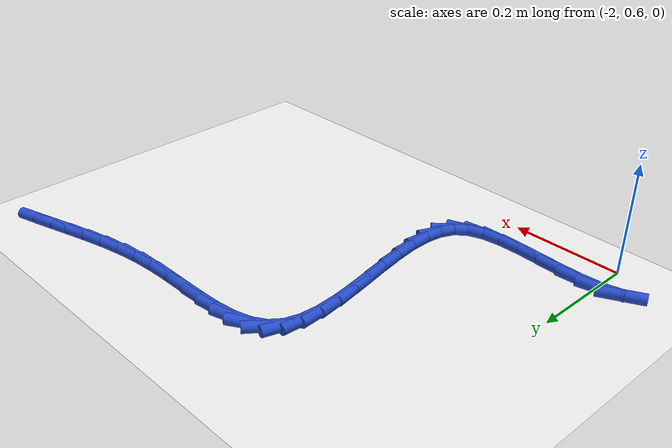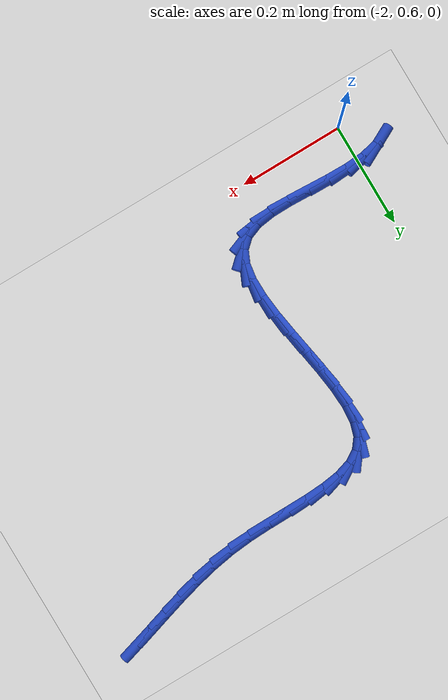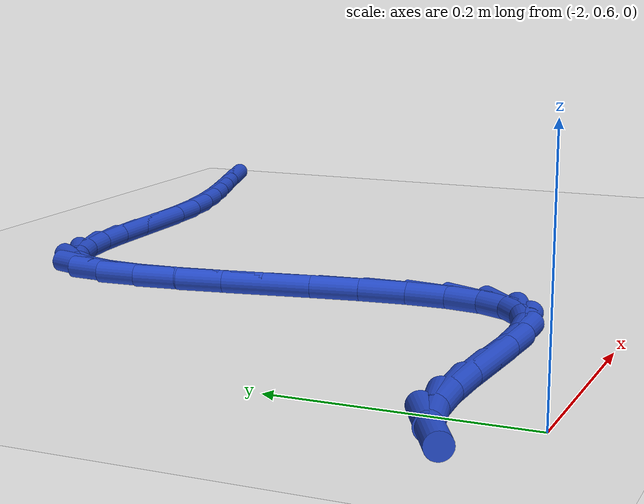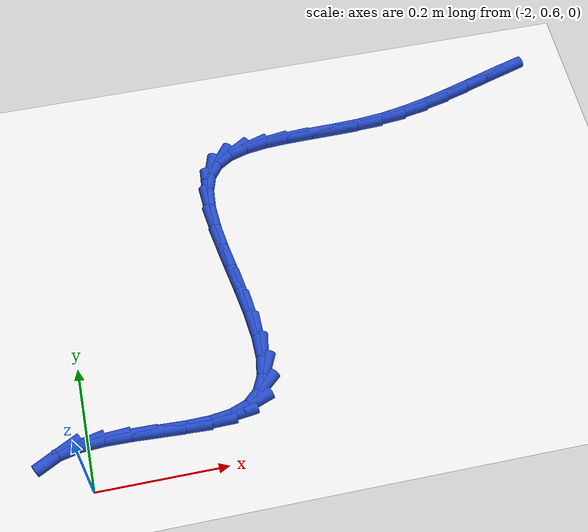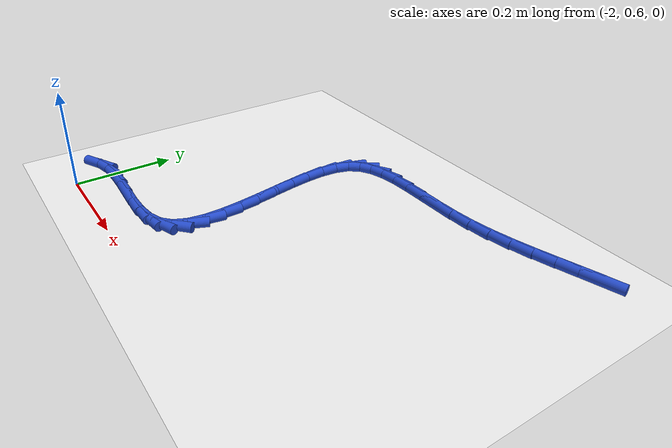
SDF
<sdf version="1.6">
 <world name="default">
  <model name="ground_plane">
   <static>1</static>
   <link name="link">
    <collision name="collision">
     <geometry><plane><normal>0 0 1</normal><size>100 100</size></plane></geometry>
     <surface><friction><ode><mu>100</mu><mu2>50</mu2></ode></friction></surface>
    </collision>
    <visual name="visual">
     <cast_shadows>0</cast_shadows>
     <geometry><plane><normal>0 0 1</normal><size>100 100</size></plane></geometry>
     <material>
      <script><uri>file://media/materials/scripts/gazebo.material</uri><name>Gazebo/WhiteGlow</name></script>
     </material>
    </visual>
   </link>
  </model>
  <model name="line">
   <link name="link_54">
    <pose>-1.2075188356131386 1.2164794602871143 0.01 0 1.57 0.28761590483058164</pose>
    <collision name="collision">
     <geometry><cylinder><radius>0.01</radius><length>0.08</length></cylinder></geometry>
    </collision>
    <visual name="visual">
     <material>
      <script><name>Gazebo/Blue</name><uri>file://media/materials/scripts/gazebo.material</uri></script>
     </material>
     <geometry><cylinder><radius>0.01</radius><length>0.08</length></cylinder></geometry>
    </visual>
   </link>
   <link name="link_55">
    <pose>-1.2424280246597537 1.2061526858341252 0.01 0 1.57 0.2981675878896848</pose>
    <collision name="collision">
     <geometry><cylinder><radius>0.01</radius><length>0.08</length></cylinder></geometry>
    </collision>
    <visual name="visual">
     <material>
      <script><name>Gazebo/Blue</name><uri>file://media/materials/scripts/gazebo.material</uri></script>
     </material>
     <geometry><cylinder><radius>0.01</radius><length>0.08</length></cylinder></geometry>
    </visual>
   </link>
   <link name="link_56">
    <pose>-1.2786002180214664 1.1950358989907204 0.01 0 1.57 0.28976983924417815</pose>
    <collision name="collision">
     <geometry><cylinder><radius>0.01</radius><length>0.08</length></cylinder></geometry>
    </collision>
    <visual name="visual">
     <material>
      <script><name>Gazebo/Blue</name><uri>file://media/materials/scripts/gazebo.material</uri></script>
     </material>
     <geometry><cylinder><radius>0.01</radius><length>0.08</length></cylinder></geometry>
    </visual>
   </link>
   <link name="link_57">
    <pose>-1.3160229380444126 1.1838778604359421 0.01 0 1.57 0.26400405345316796</pose>
    <collision name="collision">
     <geometry><cylinder><radius>0.01</radius><length>0.08</length></cylinder></geometry>
    </collision>
    <visual name="visual">
     <material>
      <script><name>Gazebo/Blue</name><uri>file://media/materials/scripts/gazebo.material</uri></script>
     </material>
     <geometry><cylinder><radius>0.01</radius><length>0.08</length></cylinder></geometry>
    </visual>
   </link>
   <link name="link_58">
    <pose>-1.3546837070747286 1.1734273308488314 0.01 0 1.57 0.22178767855473136</pose>
    <collision name="collision">
     <geometry><cylinder><radius>0.01</radius><length>0.08</length></cylinder></geometry>
    </collision>
    <visual name="visual">
     <material>
      <script><name>Gazebo/Blue</name><uri>file://media/materials/scripts/gazebo.material</uri></script>
     </material>
     <geometry><cylinder><radius>0.01</radius><length>0.08</length></cylinder></geometry>
    </visual>
   </link>
   <link name="link_59">
    <pose>-1.394570047458551 1.1644330709084307 0.01 0 1.57 0.1637119114394083</pose>
    <collision name="collision">
     <geometry><cylinder><radius>0.01</radius><length>0.08</length></cylinder></geometry>
    </collision>
    <visual name="visual">
     <material>
      <script><name>Gazebo/Blue</name><uri>file://media/materials/scripts/gazebo.material</uri></script>
     </material>
     <geometry><cylinder><radius>0.01</radius><length>0.08</length></cylinder></geometry>
    </visual>
   </link>
   <link name="link_60">
    <pose>-1.4356694815420166 1.1576438412937808 0.01 0 1.57 0.09232077611445716</pose>
    <collision name="collision">
     <geometry><cylinder><radius>0.01</radius><length>0.08</length></cylinder></geometry>
    </collision>
    <visual name="visual">
     <material>
      <script><name>Gazebo/Blue</name><uri>file://media/materials/scripts/gazebo.material</uri></script>
     </material>
     <geometry><cylinder><radius>0.01</radius><length>0.08</length></cylinder></geometry>
    </visual>
   </link>
   <link name="link_61">
    <pose>-1.4779287514167638 1.1537313107164613 0.01 0 1.57 0.034576199099833886</pose>
    <collision name="collision">
     <geometry><cylinder><radius>0.01</radius><length>0.08</length></cylinder></geometry>
    </collision>
    <visual name="visual">
     <material>
      <script><name>Gazebo/Blue</name><uri>file://media/materials/scripts/gazebo.material</uri></script>
     </material>
     <geometry><cylinder><radius>0.01</radius><length>0.08</length></cylinder></geometry>
    </visual>
   </link>
   <link name="link_62">
    <pose>-1.5207045456765935 1.1522516966575977 0.01 0 1.57 0.007821012562774132</pose>
    <collision name="collision">
     <geometry><cylinder><radius>0.01</radius><length>0.08</length></cylinder></geometry>
    </collision>
    <visual name="visual">
     <material>
      <script><name>Gazebo/Blue</name><uri>file://media/materials/scripts/gazebo.material</uri></script>
     </material>
     <geometry><cylinder><radius>0.01</radius><length>0.08</length></cylinder></geometry>
    </visual>
   </link>
   <link name="link_63">
    <pose>-1.5629094136527377 1.1519216051245462 0.01 0 1.57 0.011951572840948698</pose>
    <collision name="collision">
     <geometry><cylinder><radius>0.01</radius><length>0.08</length></cylinder></geometry>
    </collision>
    <visual name="visual">
     <material>
      <script><name>Gazebo/Blue</name><uri>file://media/materials/scripts/gazebo.material</uri></script>
     </material>
     <geometry><cylinder><radius>0.01</radius><length>0.08</length></cylinder></geometry>
    </visual>
   </link>
   <link name="link_64">
    <pose>-1.603445047508792 1.1514371174755549 0.01 0 1.57 0.05139501109117642</pose>
    <collision name="collision">
     <geometry><cylinder><radius>0.01</radius><length>0.08</length></cylinder></geometry>
    </collision>
    <visual name="visual">
     <material>
      <script><name>Gazebo/Blue</name><uri>file://media/materials/scripts/gazebo.material</uri></script>
     </material>
     <geometry><cylinder><radius>0.01</radius><length>0.08</length></cylinder></geometry>
    </visual>
   </link>
   <link name="link_65">
    <pose>-1.6412131394083551 1.1494943150688741 0.01 0 1.57 0.13790158563755042</pose>
    <collision name="collision">
     <geometry><cylinder><radius>0.01</radius><length>0.08</length></cylinder></geometry>
    </collision>
    <visual name="visual">
     <material>
      <script><name>Gazebo/Blue</name><uri>file://media/materials/scripts/gazebo.material</uri></script>
     </material>
     <geometry><cylinder><radius>0.01</radius><length>0.08</length></cylinder></geometry>
    </visual>
   </link>
   <link name="link_66">
    <pose>-1.6751153815150246 1.1447892792627523 0.01 0 1.57 0.2943001220706854</pose>
    <collision name="collision">
     <geometry><cylinder><radius>0.01</radius><length>0.08</length></cylinder></geometry>
    </collision>
    <visual name="visual">
     <material>
      <script><name>Gazebo/Blue</name><uri>file://media/materials/scripts/gazebo.material</uri></script>
     </material>
     <geometry><cylinder><radius>0.01</radius><length>0.08</length></cylinder></geometry>
    </visual>
   </link>
   <link name="link_67">
    <pose>-1.7040534659923967 1.136018091415439 0.01 0 1.57 0.5536802714463099</pose>
    <collision name="collision">
     <geometry><cylinder><radius>0.01</radius><length>0.08</length></cylinder></geometry>
    </collision>
    <visual name="visual">
     <material>
      <script><name>Gazebo/Blue</name><uri>file://media/materials/scripts/gazebo.material</uri></script>
     </material>
     <geometry><cylinder><radius>0.01</radius><length>0.08</length></cylinder></geometry>
    </visual>
   </link>
   <link name="link_68">
    <pose>-1.7269290850040682 1.1218768328851827 0.01 0 1.57 0.9229951892139585</pose>
    <collision name="collision">
     <geometry><cylinder><radius>0.01</radius><length>0.08</length></cylinder></geometry>
    </collision>
    <visual name="visual">
     <material>
      <script><name>Gazebo/Blue</name><uri>file://media/materials/scripts/gazebo.material</uri></script>
     </material>
     <geometry><cylinder><radius>0.01</radius><length>0.08</length></cylinder></geometry>
    </visual>
   </link>
   <link name="link_69">
    <pose>-1.7426644290849602 1.1010832550063208 0.01 0 1.57 1.273227023145873</pose>
    <collision name="collision">
     <geometry><cylinder><radius>0.01</radius><length>0.08</length></cylinder></geometry>
    </collision>
    <visual name="visual">
     <material>
      <script><name>Gazebo/Blue</name><uri>file://media/materials/scripts/gazebo.material</uri></script>
     </material>
     <geometry><cylinder><radius>0.01</radius><length>0.08</length></cylinder></geometry>
    </visual>
   </link>
   <link name="link_70">
    <pose>-1.7511580821149317 1.0733873091892117 0.01 0 1.57 1.4950472971203843</pose>
    <collision name="collision">
     <geometry><cylinder><radius>0.01</radius><length>0.08</length></cylinder></geometry>
    </collision>
    <visual name="visual">
     <material>
      <script><name>Gazebo/Blue</name><uri>file://media/materials/scripts/gazebo.material</uri></script>
     </material>
     <geometry><cylinder><radius>0.01</radius><length>0.08</length></cylinder></geometry>
    </visual>
   </link>
   <link name="link_71">
    <pose>-1.7536918902385865 1.040001270837123 0.01 0 1.57 -1.516834055320289</pose>
    <collision name="collision">
     <geometry><cylinder><radius>0.01</radius><length>0.08</length></cylinder></geometry>
    </collision>
    <visual name="visual">
     <material>
      <script><name>Gazebo/Blue</name><uri>file://media/materials/scripts/gazebo.material</uri></script>
     </material>
     <geometry><cylinder><radius>0.01</radius><length>0.08</length></cylinder></geometry>
    </visual>
   </link>
   <link name="link_72">
    <pose>-1.7516526796075838 1.0022483955969157 0.01 0 1.57 -1.4434052187433828</pose>
    <collision name="collision">
     <geometry><cylinder><radius>0.01</radius><length>0.08</length></cylinder></geometry>
    </collision>
    <visual name="visual">
     <material>
      <script><name>Gazebo/Blue</name><uri>file://media/materials/scripts/gazebo.material</uri></script>
     </material>
     <geometry><cylinder><radius>0.01</radius><length>0.08</length></cylinder></geometry>
    </visual>
   </link>
   <link name="link_73">
    <pose>-1.7464272763735824 0.9614519391154506 0.01 0 1.57 -1.407052181846228</pose>
    <collision name="collision">
     <geometry><cylinder><radius>0.01</radius><length>0.08</length></cylinder></geometry>
    </collision>
    <visual name="visual">
     <material>
      <script><name>Gazebo/Blue</name><uri>file://media/materials/scripts/gazebo.material</uri></script>
     </material>
     <geometry><cylinder><radius>0.01</radius><length>0.08</length></cylinder></geometry>
    </visual>
   </link>
   <link name="link_74">
    <pose>-1.739402506688243 0.9189351570395898 0.01 0 1.57 -1.39919294073697</pose>
    <collision name="collision">
     <geometry><cylinder><radius>0.01</radius><length>0.08</length></cylinder></geometry>
    </collision>
    <visual name="visual">
     <material>
      <script><name>Gazebo/Blue</name><uri>file://media/materials/scripts/gazebo.material</uri></script>
     </material>
     <geometry><cylinder><radius>0.01</radius><length>0.08</length></cylinder></geometry>
    </visual>
   </link>
   <link name="link_75">
    <pose>-1.7319651967032246 0.8760213050161942 0.01 0 1.57 -1.4180682872682167</pose>
    <collision name="collision">
     <geometry><cylinder><radius>0.01</radius><length>0.08</length></cylinder></geometry>
    </collision>
    <visual name="visual">
     <material>
      <script><name>Gazebo/Blue</name><uri>file://media/materials/scripts/gazebo.material</uri></script>
     </material>
     <geometry><cylinder><radius>0.01</radius><length>0.08</length></cylinder></geometry>
    </visual>
   </link>
   <link name="link_76">
    <pose>-1.7255021725701862 0.8340336386921242 0.01 0 1.57 -1.467937282025003</pose>
    <collision name="collision">
     <geometry><cylinder><radius>0.01</radius><length>0.08</length></cylinder></geometry>
    </collision>
    <visual name="visual">
     <material>
      <script><name>Gazebo/Blue</name><uri>file://media/materials/scripts/gazebo.material</uri></script>
     </material>
     <geometry><cylinder><radius>0.01</radius><length>0.08</length></cylinder></geometry>
    </visual>
   </link>
   <link name="link_77">
    <pose>-1.721400260440788 0.7942954137142424 0.01 0 1.57 -1.5610090323399999</pose>
    <collision name="collision">
     <geometry><cylinder><radius>0.01</radius><length>0.08</length></cylinder></geometry>
    </collision>
    <visual name="visual">
     <material>
      <script><name>Gazebo/Blue</name><uri>file://media/materials/scripts/gazebo.material</uri></script>
     </material>
     <geometry><cylinder><radius>0.01</radius><length>0.08</length></cylinder></geometry>
    </visual>
   </link>
   <link name="link_78">
    <pose>-1.721046286466689 0.7581298857294091 0.01 0 1.57 1.419081648655124</pose>
    <collision name="collision">
     <geometry><cylinder><radius>0.01</radius><length>0.08</length></cylinder></geometry>
    </collision>
    <visual name="visual">
     <material>
      <script><name>Gazebo/Blue</name><uri>file://media/materials/scripts/gazebo.material</uri></script>
     </material>
     <geometry><cylinder><radius>0.01</radius><length>0.08</length></cylinder></geometry>
    </visual>
   </link>
   <link name="link_79">
    <pose>-1.7258270767995496 0.7268603103844855 0.01 0 1.57 1.1469563649111343</pose>
    <collision name="collision">
     <geometry><cylinder><radius>0.01</radius><length>0.08</length></cylinder></geometry>
    </collision>
    <visual name="visual">
     <material>
      <script><name>Gazebo/Blue</name><uri>file://media/materials/scripts/gazebo.material</uri></script>
     </material>
     <geometry><cylinder><radius>0.01</radius><length>0.08</length></cylinder></geometry>
    </visual>
   </link>
   <link name="link_80">
    <pose>-1.7371294575910277 0.7018099433263331 0.01 0 1.57 0.7416146124640587</pose>
    <collision name="collision">
     <geometry><cylinder><radius>0.01</radius><length>0.08</length></cylinder></geometry>
    </collision>
    <visual name="visual">
     <material>
      <script><name>Gazebo/Blue</name><uri>file://media/materials/scripts/gazebo.material</uri></script>
     </material>
     <geometry><cylinder><radius>0.01</radius><length>0.08</length></cylinder></geometry>
    </visual>
   </link>
   <link name="link_81">
    <pose>-1.7562925776379785 0.6842554776262515 0.01 0 1.57 0.36053530058516015</pose>
    <collision name="collision">
     <geometry><cylinder><radius>0.01</radius><length>0.08</length></cylinder></geometry>
    </collision>
    <visual name="visual">
     <material>
      <script><name>Gazebo/Blue</name><uri>file://media/materials/scripts/gazebo.material</uri></script>
     </material>
     <geometry><cylinder><radius>0.01</radius><length>0.08</length></cylinder></geometry>
    </visual>
   </link>
   <link name="link_82">
    <pose>-1.7832435456660567 0.6740945822301739 0.01 0 1.57 0.13368802941325075</pose>
    <collision name="collision">
     <geometry><cylinder><radius>0.01</radius><length>0.08</length></cylinder></geometry>
    </collision>
    <visual name="visual">
     <material>
      <script><name>Gazebo/Blue</name><uri>file://media/materials/scripts/gazebo.material</uri></script>
     </material>
     <geometry><cylinder><radius>0.01</radius><length>0.08</length></cylinder></geometry>
    </visual>
   </link>
   <link name="link_83">
    <pose>-1.8162961523388783 0.6696493301963399 0.01 0 1.57 0.01320504084020126</pose>
    <collision name="collision">
     <geometry><cylinder><radius>0.01</radius><length>0.08</length></cylinder></geometry>
    </collision>
    <visual name="visual">
     <material>
      <script><name>Gazebo/Blue</name><uri>file://media/materials/scripts/gazebo.material</uri></script>
     </material>
     <geometry><cylinder><radius>0.01</radius><length>0.08</length></cylinder></geometry>
    </visual>
   </link>
   <link name="link_84">
    <pose>-1.8536760311471967 0.6691556986777207 0.01 0 1.57 -0.042395018918547196</pose>
    <collision name="collision">
     <geometry><cylinder><radius>0.01</radius><length>0.08</length></cylinder></geometry>
    </collision>
    <visual name="visual">
     <material>
      <script><name>Gazebo/Blue</name><uri>file://media/materials/scripts/gazebo.material</uri></script>
     </material>
     <geometry><cylinder><radius>0.01</radius><length>0.08</length></cylinder></geometry>
    </visual>
   </link>
   <link name="link_85">
    <pose>-1.8936088155817643 0.670849664827288 0.01 0 1.57 -0.051966732445869315</pose>
    <collision name="collision">
     <geometry><cylinder><radius>0.01</radius><length>0.08</length></cylinder></geometry>
    </collision>
    <visual name="visual">
     <material>
      <script><name>Gazebo/Blue</name><uri>file://media/materials/scripts/gazebo.material</uri></script>
     </material>
     <geometry><cylinder><radius>0.01</radius><length>0.08</length></cylinder></geometry>
    </visual>
   </link>
   <link name="link_86">
    <pose>-1.9343201391333331 0.6729672057980124 0.01 0 1.57 -0.01956399575409565</pose>
    <collision name="collision">
     <geometry><cylinder><radius>0.01</radius><length>0.08</length></cylinder></geometry>
    </collision>
    <visual name="visual">
     <material>
      <script><name>Gazebo/Blue</name><uri>file://media/materials/scripts/gazebo.material</uri></script>
     </material>
     <geometry><cylinder><radius>0.01</radius><length>0.08</length></cylinder></geometry>
    </visual>
   </link>
   <link name="link_87">
    <pose>-1.9740356352926545 0.6737442987428651 0.01 0 1.57 0.06291210087980627</pose>
    <collision name="collision">
     <geometry><cylinder><radius>0.01</radius><length>0.08</length></cylinder></geometry>
    </collision>
    <visual name="visual">
     <material>
      <script><name>Gazebo/Blue</name><uri>file://media/materials/scripts/gazebo.material</uri></script>
     </material>
     <geometry><cylinder><radius>0.01</radius><length>0.08</length></cylinder></geometry>
    </visual>
   </link>
   <link name="link_88">
    <pose>-2.010980937550482 0.6714169208148173 0.01 0 1.57 0.21854267443050668</pose>
    <collision name="collision">
     <geometry><cylinder><radius>0.01</radius><length>0.08</length></cylinder></geometry>
    </collision>
    <visual name="visual">
     <material>
      <script><name>Gazebo/Blue</name><uri>file://media/materials/scripts/gazebo.material</uri></script>
     </material>
     <geometry><cylinder><radius>0.01</radius><length>0.08</length></cylinder></geometry>
    </visual>
   </link>
   <link name="link_89">
    <pose>-2.0433816793975668 0.6642210491668404 0.01 0 1.57 0.47865508835536147</pose>
    <collision name="collision">
     <geometry><cylinder><radius>0.01</radius><length>0.08</length></cylinder></geometry>
    </collision>
    <visual name="visual">
     <material>
      <script><name>Gazebo/Blue</name><uri>file://media/materials/scripts/gazebo.material</uri></script>
     </material>
     <geometry><cylinder><radius>0.01</radius><length>0.08</length></cylinder></geometry>
    </visual>
   </link>
  </model>
 </world>
</sdf>
